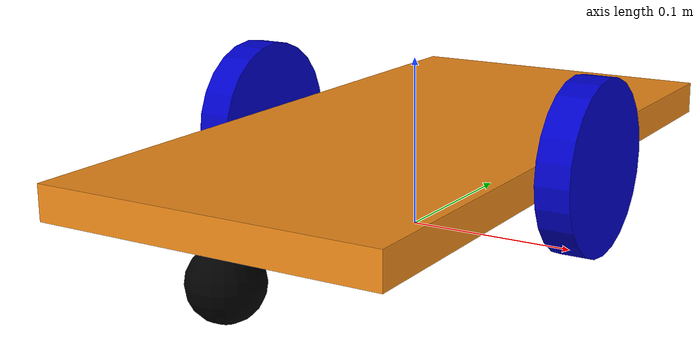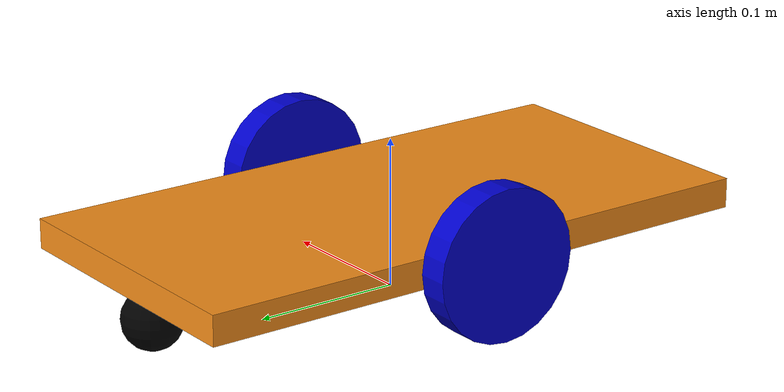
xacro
<?xml version="1.0"?>
<robot name="diffcar" xmlns:xacro="http://www.ros.org/wiki/xacro">

<!-- define constants -->
<xacro:property name="PI" value="3.1415926" />
<xacro:property name="mass" value="1" /> <!-- kg -->
<xacro:property name="wheel_mass" value="0.3" /> <!-- kg -->
<xacro:property name="width" value="0.2" />
<xacro:property name="height" value="0.4" />
<xacro:property name="thickness" value="0.02" /> <!-- 2 cm -->
<xacro:property name="wheel_thickness" value="0.02" /> <!-- 1 cm -->
<xacro:property name="wheel_radius" value="0.05" /> <!-- 5 cm -->
<xacro:property name="caster_radius" value="${(wheel_radius - thickness/2)/2}" />
<xacro:property name="caster_mass" value="0.1" /> <!-- kg -->

<!-- define macros -->
<xacro:macro name="box_inertia_matrix_" params="m w h d">
  <inertial>
    <mass value="${m}"/>
    <inertia ixx="${m / 12.0 * (d*d + h*h)}" ixy="0.0" ixz="0.0"
             iyy="${m / 12.0 * (w*w + h*h)}" iyz="0.0"
             izz="${m / 12.0 * (w*w + d*d)}"/>
  </inertial>
</xacro:macro>

<xacro:macro name="sphere_inertial_matrix_" params="m r">
  <inertial>
    <mass value="${m}" />
    <inertia ixx="${2*m*r*r/5}" ixy="0" ixz="0"
             iyy="${2*m*r*r/5}" iyz="0"
             izz="${2*m*r*r/5}" />
    </inertial>
</xacro:macro>

<xacro:macro name="cylinder_inertial_matrix_" params="m r h">
  <inertial>
    <mass value="${m}" />
    <inertia ixx="${m*(3*r*r+h*h)/12}" ixy = "0" ixz = "0"
             iyy="${m*(3*r*r+h*h)/12}" iyz = "0"
             izz="${m*r*r/2}" />
  </inertial>
</xacro:macro>

<xacro:macro name="wheel_" params="prefix reflect">
<link name="${prefix}_wheel_link">
  <visual>
    <geometry>
      <cylinder length="${wheel_thickness}" radius="${wheel_radius}" />
    </geometry>
    <origin xyz="0 0 0" rpy="0 ${PI/2} 0" />
    <material name="blue">
      <color rgba="0 0 .8 1"/>
    </material>
  </visual>
  <collision>
    <geometry>
      <cylinder length="${wheel_thickness}" radius="${wheel_radius}" />
    </geometry>
    <origin xyz="0 0 0" rpy="0 ${PI/2} 0" />
  </collision>
  <cylinder_inertial_matrix_  m="${wheel_mass}" r="${wheel_radius}" h="${wheel_thickness}" />
</link>
<gazebo reference="${prefix}_wheel_link">
  <material>Gazebo/Blue</material>
</gazebo>
<joint name="${prefix}_wheel_joint" type="continuous">
  <parent link="base_link" />
  <child link="${prefix}_wheel_link" />
  <origin xyz="${(width/2 + wheel_thickness/2)*reflect} 0 0" rpy="0 0 0" />
  <axis xyz="1 0 0" />
</joint>
<transmission name="${prefix}_tran">
  <type>transmission_interface/SimpleTransmission</type>
  <joint name="${prefix}_wheel_joint">
    <hardwareInterface>hardware_interface/VelocityJointInterface</hardwareInterface>
  </joint>
  <actuator name="${prefix}_motor">
    <hardwareInterface>hardware_interface/VelocityJointInterface</hardwareInterface>
    <mechanicalReduction>1</mechanicalReduction>
  </actuator>
</transmission>
</xacro:macro>

<xacro:macro name="caster_" params="prefix reflect">
<link name="${prefix}_caster_link">
  <visual>
    <origin xyz="0 0 0" rpy="0 0 0"/>
      <geometry>
        <sphere radius="${caster_radius}" />
      </geometry>
      <material name="black">
        <color rgba="0 0 0 1"/>
      </material>
  </visual>
  <collision>
    <origin xyz="0 0 0" rpy="0 0 0"/>
      <geometry>
        <sphere radius="${caster_radius}" />
      </geometry>
  </collision>
    <sphere_inertial_matrix_  m="${caster_mass}" r="${caster_radius}" />
  </link>
  <joint name="${prefix}_caster_joint" type="continuous">
    <parent link="base_link"/>
    <child link="${prefix}_caster_link"/>
    <origin xyz="0 ${reflect*(height/2 - caster_radius)} ${-(caster_radius + thickness/2)}" rpy="0 0 0"/>
    <axis xyz="1 0 0"/>
  </joint>
  <gazebo reference="${prefix}_caster_link">
    <material>Gazebo/Black</material>
  </gazebo>
</xacro:macro>

<!-- define links -->

<!-- base foot print -->
<link name="base_footprint">
  <visual>
    <origin xyz="0 0 0" rpy="0 0 0" />
    <geometry>
      <box size="0.001 0.001 0.001" />
    </geometry>
  </visual>
  <box_inertia_matrix_ m="${mass*2}" w="0.001" h="0.001" d="0.001" />
</link>

<gazebo reference="base_footprint">
  <turnGravityOff>false</turnGravityOff>
</gazebo>

<!-- Base Link-->
<link name="base_link">
  <collision>
    <geometry>
      <box size="${width} ${height} ${thickness}" />
    </geometry>
  </collision>
  <visual>
    <geometry>
      <box size="${width} ${height} ${thickness}" />
    </geometry>
  </visual>
  <box_inertia_matrix_ m="${mass}" w="${width}" h="${height}" d="${thickness}" />
</link>

<joint name="base_link_joint" type="fixed">
  <origin xyz="0 0 ${wheel_radius}" rpy="0 0 0" />
  <parent link="base_footprint"/>
  <child link="base_link" />
</joint>

<gazebo reference="base_link">
  <material>Gazebo/Orange</material>
</gazebo>

<!-- Left Wheel Link -->
<wheel_ prefix="left" reflect="-1" />

<!-- Right Wheel Link -->
<wheel_ prefix="right" reflect="1" />

<!-- front caster link -->
<caster_ prefix="front" reflect="1" />

<!-- back caster link -->
<caster_ prefix="back" reflect="-1" />

<!-- gazebo controller plugin-->
<!-- ref:https://kiranpalla.com/autonomous-navigation-ros-differential-drive-robot-simulation/simple-navigation-with-differential-drive-plugin/-->
<gazebo>
<plugin name="differential_drive_controller"
        filename="libgazebo_ros_diff_drive.so">
  <rosDebugLevel>Debug</rosDebugLevel>
  <publishWheelTF>true</publishWheelTF>
  <robotNamespace>/</robotNamespace>
  <publishTf>1</publishTf>
  <publishWheelJointState>true</publishWheelJointState>
  <alwaysOn>true</alwaysOn>
  <updateRate>100.0</updateRate>
  <legacyMode>true</legacyMode>
  <leftJoint>left_wheel_joint</leftJoint>
  <rightJoint>right_wheel_joint</rightJoint>
  <wheelSeparation>${width + wheel_thickness}</wheelSeparation>
  <wheelDiameter>${2*wheel_radius}</wheelDiameter>
  <broadcastTF>1</broadcastTF>
  <wheelTorque>30</wheelTorque>
  <wheelAcceleration>1.8</wheelAcceleration>
  <commandTopic>cmd_vel</commandTopic>
  <odometryFrame>odom</odometryFrame>
  <odometryTopic>odom</odometryTopic>
  <robotBaseFrame>base_footprint</robotBaseFrame>
</plugin>
</gazebo>

</robot>
